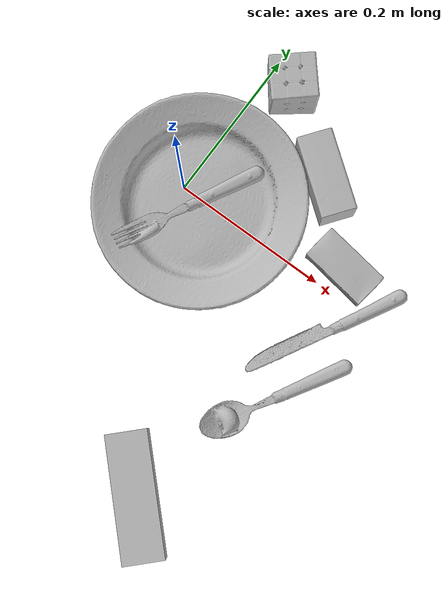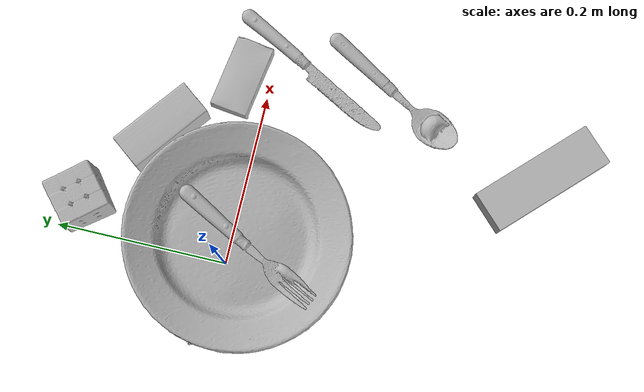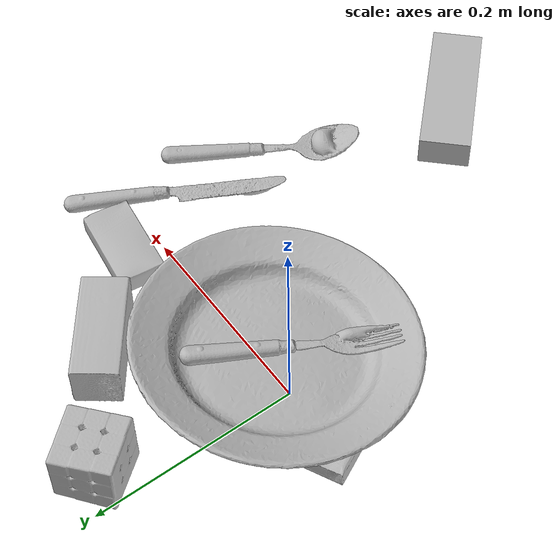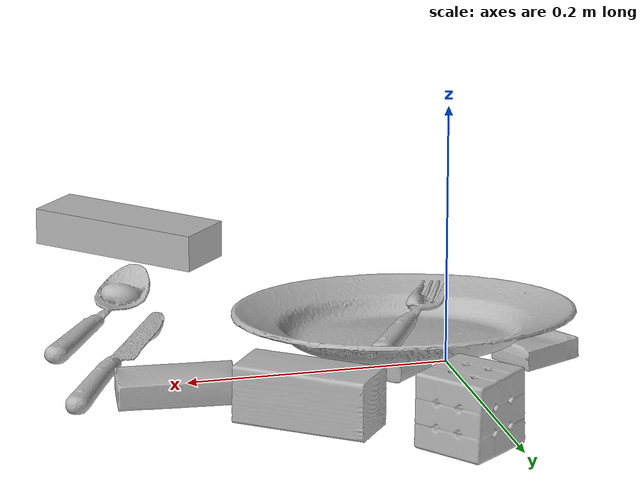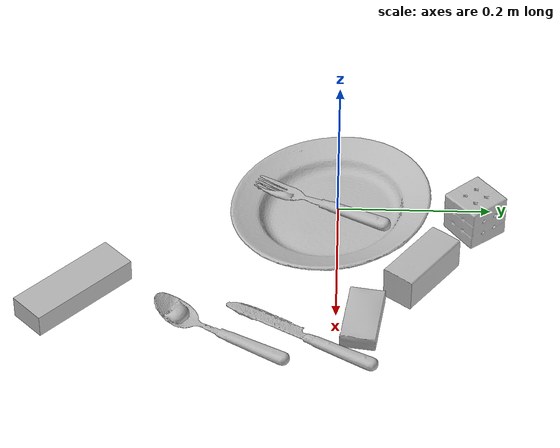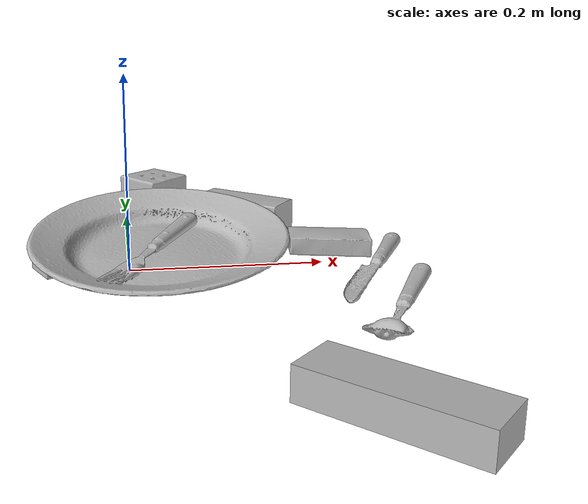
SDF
<sdf version="1.4">
  <world name="default">
    <light name="light1" type="point">
      <pose>0 0 1 0 0 0</pose>
      <diffuse>3 3 3 1</diffuse>
      <specular>3 3 3 1</specular>
    </light>
    <light name="light2" type="point">
      <pose>0 0.5 2 0 0 0</pose>
      <diffuse>1 1 1 1</diffuse>
      <specular>1 1 1 1</specular>
    </light>
    <light name="light3" type="point">
      <pose>0 0.5 2 0 0 0</pose>
      <diffuse>3 3 3 1</diffuse>
      <specular>3 3 3 1</specular>
    </light>
    <scene>
      <ambient>0.7 0.7 0.7</ambient>
    </scene>
    <model name="box11">
      <link name="link_box11">
        <collision name="default">
          <geometry>
            <mesh>
              <uri>model://pudding_box/collision_meshes/collision.obj</uri>
              <scale>0.5 0.5 0.5</scale>
            </mesh>
          </geometry>
          <surface>
            <friction>
              <ode>
                <mu>0.5</mu>
                <mu2>0.5</mu2>
              </ode>
            </friction>
          <contact>
        <ode>
            <max_vel>0</max_vel>
            <min_depth>0.0001</min_depth>
            <kp>1e8</kp>
        </ode>
    </contact></surface>
        </collision>
        <visual name="default">
          <geometry>
            <mesh>
              <uri>model://pudding_box/visual_meshes/visual.dae</uri>
              <scale>0.5 0.5 0.5</scale>
            </mesh>
          </geometry>
        </visual>
        <inertial>
          <mass>0.05641884729266167</mass>
          <pose>0.00024474109522998333 0.000403394311433658 -0.00025944141088984907 0.005213101771016666 -0.006603799659696515 0.020079828883224148</pose>
          <inertia>
            <ixx>1.5944652e-05</ixx>
            <iyy>1.0727675e-05</iyy>
            <izz>2.3546443e-05</izz>
            <ixy>0</ixy>
            <ixz>0</ixz>
            <iyz>0</iyz>
          </inertia>
        </inertial>
      </link>
      <pose>0.05061408504843712 0.01077306643128395 0.00996689684689045 0.036398548217048673 0.0012625426927480373 0.7146211101869543</pose>
    </model>
    <model name="box12">
      <link name="link_box12">
        <collision name="default">
          <geometry>
            <mesh>
              <uri>model://wood_block/collision_meshes/collision.obj</uri>
              <scale>0.5 0.5 0.5</scale>
            </mesh>
          </geometry>
          <surface>
            <friction>
              <ode>
                <mu>0.5</mu>
                <mu2>0.5</mu2>
              </ode>
            </friction>
          <contact>
        <ode>
            <max_vel>0</max_vel>
            <min_depth>0.0001</min_depth>
            <kp>1e8</kp>
        </ode>
    </contact></surface>
        </collision>
        <visual name="default">
          <geometry>
            <mesh>
              <uri>model://wood_block/visual_meshes/visual.dae</uri>
              <scale>0.5 0.5 0.5</scale>
            </mesh>
          </geometry>
        </visual>
        <inertial>
          <mass>0.1445801854133606</mass>
          <pose>-2.906657982748584e-06 -0.000285404734313488 0.00013204291462898254 -0.052208162951624955 -0.0051926954609686745 -0.006861377578377277</pose>
          <inertia>
            <ixx>4.836754e-05</ixx>
            <iyy>0.0001527931</iyy>
            <izz>0.00015222155</izz>
            <ixy>0</ixy>
            <ixz>0</ixz>
            <iyz>0</iyz>
          </inertia>
        </inertial>
      </link>
      <pose>0.13351041078567505 0.1072562113404274 0.022629262879490852 -0.005208523747949121 0.005718767040718879 2.4921966508396305</pose>
    </model>
    <model name="box13">
      <link name="link_box13">
        <collision name="default">
          <geometry>
            <mesh>
              <uri>model://sugar_box/collision_meshes/collision.obj</uri>
              <scale>0.5 0.5 0.5</scale>
            </mesh>
          </geometry>
          <surface>
            <friction>
              <ode>
                <mu>0.5</mu>
                <mu2>0.5</mu2>
              </ode>
            </friction>
          <contact>
        <ode>
            <max_vel>0</max_vel>
            <min_depth>0.0001</min_depth>
            <kp>1e8</kp>
        </ode>
    </contact></surface>
        </collision>
        <visual name="default">
          <geometry>
            <mesh>
              <uri>model://sugar_box/visual_meshes/visual.dae</uri>
              <scale>0.5 0.5 0.5</scale>
            </mesh>
          </geometry>
        </visual>
        <inertial>
          <mass>0.1187032163143158</mass>
          <pose>0.0005171863595023751 1.924554817378521e-05 -0.00018182402709499002 -0.0004046259512710581 0.0010506635216588768 0.002615378556274426</pose>
          <inertia>
            <ixx>2.4725794e-05</ixx>
            <iyy>7.991886e-05</iyy>
            <izz>9.567241e-05</izz>
            <ixy>0</ixy>
            <ixz>0</ixz>
            <iyz>0</iyz>
          </inertia>
        </inertial>
      </link>
      <pose>0.21612586081027985 0.03326525166630745 0.011399306356906891 0.0007748099551668031 -0.02343308658048389 2.9932038876262417</pose>
    </model>
    <model name="box21">
      <link name="link_box21">
        <collision name="default">
          <geometry>
            <mesh>
              <uri>model://jenga/collision_meshes/collision.obj</uri>
              <scale>1.0 1.0 1.0</scale>
            </mesh>
          </geometry>
          <surface>
            <friction>
              <ode>
                <mu>0.5</mu>
                <mu2>0.5</mu2>
              </ode>
            </friction>
          <contact>
        <ode>
            <max_vel>0</max_vel>
            <min_depth>0.0001</min_depth>
            <kp>1e8</kp>
        </ode>
    </contact></surface>
        </collision>
        <visual name="default">
          <geometry>
            <mesh>
              <uri>model://jenga/visual_meshes/visual.dae</uri>
              <scale>1.0 1.0 1.0</scale>
            </mesh>
          </geometry>
        </visual>
        <inertial>
          <mass>0.20898528397083282</mass>
          <pose>-2.502855807051674e-07 -0.00010250010382151231 -4.092339804628864e-05 0.0 -7.342154049184251e-07 0.0</pose>
          <inertia>
            <ixx>5.7831294e-05</ixx>
            <iyy>0.0003918633</iyy>
            <izz>0.00041834736</izz>
            <ixy>0</ixy>
            <ixz>0</ixz>
            <iyz>0</iyz>
          </inertia>
        </inertial>
      </link>
      <pose>0.17701289057731628 -0.3304068446159363 0.01499999687075615 -5.713467291937151e-09 3.344972784162439e-09 2.3577423950666527</pose>
    </model>
    <model name="box22">
      <link name="link_box22">
        <collision name="default">
          <geometry>
            <mesh>
              <uri>model://rubiks_cube/collision_meshes/collision.obj</uri>
              <scale>1.0 1.0 1.0</scale>
            </mesh>
          </geometry>
          <surface>
            <friction>
              <ode>
                <mu>0.5</mu>
                <mu2>0.5</mu2>
              </ode>
            </friction>
          <contact>
        <ode>
            <max_vel>0</max_vel>
            <min_depth>0.0001</min_depth>
            <kp>1e8</kp>
        </ode>
    </contact></surface>
        </collision>
        <visual name="default">
          <geometry>
            <mesh>
              <uri>model://rubiks_cube/visual_meshes/visual.dae</uri>
              <scale>1.0 1.0 1.0</scale>
            </mesh>
          </geometry>
        </visual>
        <inertial>
          <mass>0.28698527812957764</mass>
          <pose>2.6721041649580002e-05 5.2569666877388954e-05 -7.2643156272533815e-06 -0.05467256881712973 -0.09813902151902686 -0.034455808755049874</pose>
          <inertia>
            <ixx>0.00015857864</ixx>
            <iyy>0.00015783912</iyy>
            <izz>0.00015989273</izz>
            <ixy>0</ixy>
            <ixz>0</ixz>
            <iyz>0</iyz>
          </inertia>
        </inertial>
      </link>
      <pose>0.034010451287031174 0.17707441747188568 0.028678936883807182 -4.875807080483938e-06 -2.2306724225756726e-06 0.6943828963075429</pose>
    </model>
    <model name="box23">
      <link name="link_box23">
        <collision name="default">
          <geometry>
            <mesh>
              <uri>model://cracker_box/collision_meshes/collision.obj</uri>
              <scale>0.25 0.25 0.25</scale>
            </mesh>
          </geometry>
          <surface>
            <friction>
              <ode>
                <mu>0.5</mu>
                <mu2>0.5</mu2>
              </ode>
            </friction>
          <contact>
        <ode>
            <max_vel>0</max_vel>
            <min_depth>0.0001</min_depth>
            <kp>1e8</kp>
        </ode>
    </contact></surface>
        </collision>
        <visual name="default">
          <geometry>
            <mesh>
              <uri>model://cracker_box/visual_meshes/visual.dae</uri>
              <scale>0.25 0.25 0.25</scale>
            </mesh>
          </geometry>
        </visual>
        <inertial>
          <mass>0.04468085244297981</mass>
          <pose>0.00023660414444748312 6.358561222441494e-05 -0.0004257383698131889 -0.0003162076226327385 -0.011106488669128663 0.0025467943033026423</pose>
          <inertia>
            <ixx>7.10301e-06</ixx>
            <iyy>1.1728463e-05</iyy>
            <izz>1.6737597e-05</izz>
            <ixy>0</ixy>
            <ixz>0</ixz>
            <iyz>0</iyz>
          </inertia>
        </inertial>
      </link>
      <pose>-0.06670720875263214 0.011696410365402699 0.009272252209484577 0.012836124447732074 0.0027475645539377183 0.4636581523898182</pose>
    </model>
    <model name="plate1">
      <link name="link_plate1">
        <collision name="default">
          <geometry>
            <mesh>
              <uri>model://plate/collision_meshes/collision.obj</uri>
              <scale>1.0 1.0 1.0</scale>
            </mesh>
          </geometry>
          <surface>
            <friction>
              <ode>
                <mu>0.5</mu>
                <mu2>0.5</mu2>
              </ode>
            </friction>
          <contact>
        <ode>
            <max_vel>0</max_vel>
            <min_depth>0.0001</min_depth>
            <kp>1e8</kp>
        </ode>
    </contact></surface>
        </collision>
        <visual name="default">
          <geometry>
            <mesh>
              <uri>model://plate/visual_meshes/visual.dae</uri>
              <scale>1.0 1.0 1.0</scale>
            </mesh>
          </geometry>
        </visual>
        <inertial>
          <mass>0.20184239745140076</mass>
          <pose>-0.0006044648471288383 0.00027825962752103806 -0.0010561983799561858 0.0022188105697194356 -0.003225466439192432 0.4526020757977656</pose>
          <inertia>
            <ixx>0.00094422296</ixx>
            <iyy>0.00093519164</iyy>
            <izz>0.0018467589</izz>
            <ixy>0</ixy>
            <ixz>0</ixz>
            <iyz>0</iyz>
          </inertia>
        </inertial>
      </link>
      <pose>0.030793625861406326 -0.008455777540802956 0.029910994693636894 0.09277317551463872 0.059286449426855674 -0.6254659039083778</pose>
    </model>
    <model name="silverware1">
      <link name="link_silverware1">
        <collision name="default">
          <geometry>
            <mesh>
              <uri>model://fork/collision_meshes/collision.obj</uri>
              <scale>1.0 1.0 1.0</scale>
            </mesh>
          </geometry>
          <surface>
            <friction>
              <ode>
                <mu>0.5</mu>
                <mu2>0.5</mu2>
              </ode>
            </friction>
          <contact>
        <ode>
            <max_vel>0</max_vel>
            <min_depth>0.0001</min_depth>
            <kp>1e8</kp>
        </ode>
    </contact></surface>
        </collision>
        <visual name="default">
          <geometry>
            <mesh>
              <uri>model://fork/visual_meshes/visual.dae</uri>
              <scale>1.0 1.0 1.0</scale>
            </mesh>
          </geometry>
        </visual>
        <inertial>
          <mass>0.03151825815439224</mass>
          <pose>-0.029570046812295914 0.00046588233090005815 0.0003218861820641905 -0.013550990610422763 -0.010977834578584837 0.014453900606944525</pose>
          <inertia>
            <ixx>1.1048933e-06</ixx>
            <iyy>8.2285114e-05</iyy>
            <izz>8.2779305e-05</izz>
            <ixy>0</ixy>
            <ixz>0</ixz>
            <iyz>0</iyz>
          </inertia>
        </inertial>
      </link>
      <pose>0.023476045578718185 -0.019477704539895058 0.028666788712143898 -0.0068452286490994834 0.06714234059965662 -2.0660829066568955</pose>
    </model>
    <model name="silverware2">
      <link name="link_silverware2">
        <collision name="default">
          <geometry>
            <mesh>
              <uri>model://spoon/collision_meshes/collision.obj</uri>
              <scale>1.0 1.0 1.0</scale>
            </mesh>
          </geometry>
          <surface>
            <friction>
              <ode>
                <mu>0.5</mu>
                <mu2>0.5</mu2>
              </ode>
            </friction>
          <contact>
        <ode>
            <max_vel>0</max_vel>
            <min_depth>0.0001</min_depth>
            <kp>1e8</kp>
        </ode>
    </contact></surface>
        </collision>
        <visual name="default">
          <geometry>
            <mesh>
              <uri>model://spoon/visual_meshes/visual.dae</uri>
              <scale>1.0 1.0 1.0</scale>
            </mesh>
          </geometry>
        </visual>
        <inertial>
          <mass>0.04083608463406563</mass>
          <pose>-0.005526324734091759 -0.001603417913429439 -0.0007271658978424966 0.03521537575369321 -0.03906582415196765 0.006150608891198343</pose>
          <inertia>
            <ixx>2.2713682e-06</ixx>
            <iyy>0.0001553799</iyy>
            <izz>0.0001565001</izz>
            <ixy>0</ixy>
            <ixz>0</ixz>
            <iyz>0</iyz>
          </inertia>
        </inertial>
      </link>
      <pose>0.24292045831680298 -0.14311283826828003 0.008385262452065945 0.006729129365236782 0.026893015970723133 -2.098935543337895</pose>
    </model>
    <model name="silverware3">
      <link name="link_silverware3">
        <collision name="default">
          <geometry>
            <mesh>
              <uri>model://knife/collision_meshes/collision.obj</uri>
              <scale>1.0 1.0 1.0</scale>
            </mesh>
          </geometry>
          <surface>
            <friction>
              <ode>
                <mu>0.5</mu>
                <mu2>0.5</mu2>
              </ode>
            </friction>
          <contact>
        <ode>
            <max_vel>0</max_vel>
            <min_depth>0.0001</min_depth>
            <kp>1e8</kp>
        </ode>
    </contact></surface>
        </collision>
        <visual name="default">
          <geometry>
            <mesh>
              <uri>model://knife/visual_meshes/visual.dae</uri>
              <scale>1.0 1.0 1.0</scale>
            </mesh>
          </geometry>
        </visual>
        <inertial>
          <mass>0.024411516264081</mass>
          <pose>-0.023785248398780823 0.0015275123296305537 5.062021955382079e-05 0.07305335097392199 0.01724841144103926 -0.007409823891069756</pose>
          <inertia>
            <ixx>6.9289786e-07</ixx>
            <iyy>9.37851e-05</iyy>
            <izz>9.400826e-05</izz>
            <ixy>0</ixy>
            <ixz>0</ixz>
            <iyz>0</iyz>
          </inertia>
        </inertial>
      </link>
      <pose>0.24236443638801575 -0.041530560702085495 0.007946604862809181 -0.02388409743076782 -0.01454282876774683 -2.0779012089359923</pose>
    </model>
  <physics type="ode">
      <max_contacts>50</max_contacts>
      <ode>
        <solver>
          <type>quick</type>
          <iters>75</iters>
        </solver>
        <constraints>
          <contact_max_correcting_vel>0</contact_max_correcting_vel>
          <contact_surface_layer>0</contact_surface_layer>
        </constraints>
      </ode>
    </physics></world>
</sdf>
